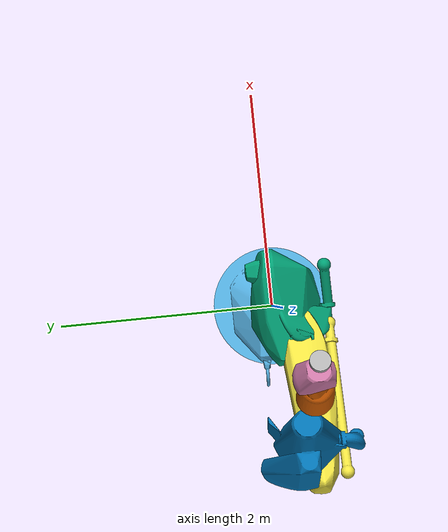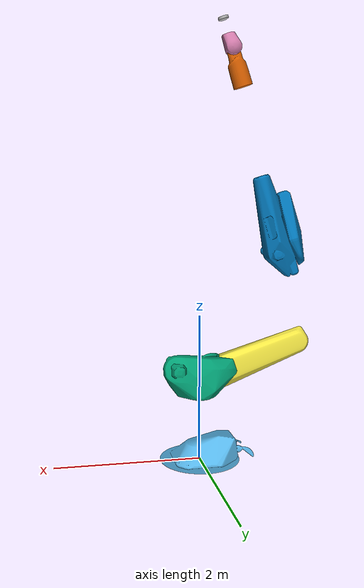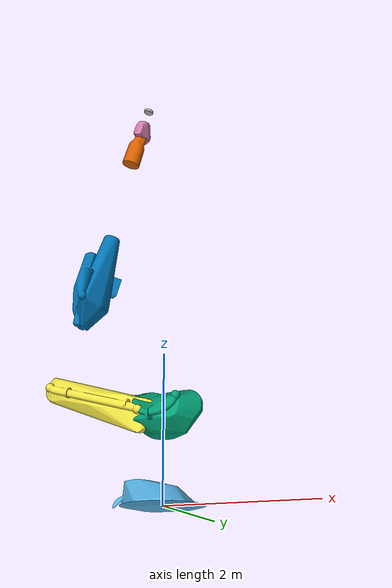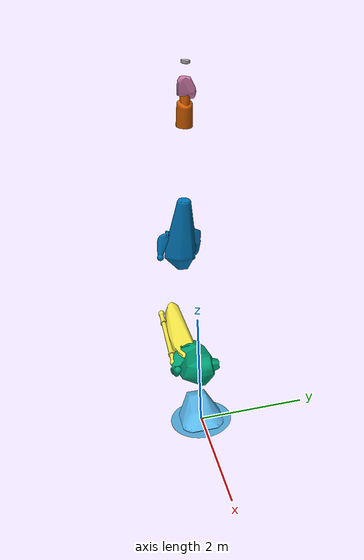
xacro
<?xml version="1.0"?>
<robot name="kr150_r3100_2" xmlns:xacro="http://wiki.ros.org/xacro">
  <!-- Import urdf file  -->
  <xacro:include filename="$(find kuka_quantec_support)/urdf/kr150_r3100_2_macro.xacro" />
  <!-- Read additional arguments  -->
  <xacro:arg name="use_fake_hardware" default="false"/>
  <xacro:arg name="roundtrip_time" default="0"/>
  <xacro:arg name="client_ip" default="0.0.0.0"/>
  <xacro:arg name="client_port" default="59152"/>
  <xacro:arg name="controller_ip" default="0.0.0.0"/>
  <xacro:arg name="prefix" default=""/>
  <xacro:arg name="x" default="0"/>
  <xacro:arg name="y" default="0"/>
  <xacro:arg name="z" default="0"/>
  <xacro:arg name="roll" default="0"/>
  <xacro:arg name="pitch" default="0"/>
  <xacro:arg name="yaw" default="0"/>
  <xacro:kuka_kr150_r3100_2_robot client_ip="$(arg client_ip)" client_port="$(arg client_port)" controller_ip="$(arg controller_ip)" prefix="$(arg prefix)" use_fake_hardware="$(arg use_fake_hardware)" roundtrip_time="$(arg roundtrip_time)">
    <origin xyz="$(arg x) $(arg y) $(arg z)" rpy="$(arg roll) $(arg pitch) $(arg yaw)"/>
  </xacro:kuka_kr150_r3100_2_robot>
</robot>

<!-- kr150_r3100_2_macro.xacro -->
<robot xmlns:xacro="http://wiki.ros.org/xacro">
  <xacro:include filename="$(find kuka_quantec_support)/urdf/kr_quantec_ros2_control.xacro"/>
  <xacro:include filename="$(find kuka_quantec_support)/urdf/kr_quantec_transmission.xacro"/>
  <xacro:macro name="kuka_kr150_r3100_2_robot" params="client_ip client_port controller_ip prefix use_fake_hardware roundtrip_time *origin">
    <xacro:include filename="$(find kuka_resources)/urdf/common_materials.xacro"/>
    <!-- ros2 control instance -->
    <xacro:kuka_quantec_ros2_control name="${prefix}kr150_r3100_2" client_ip="${client_ip}" client_port="${client_port}" controller_ip="${controller_ip}" prefix="${prefix}" use_fake_hardware="${use_fake_hardware}" roundtrip_time="${roundtrip_time}"/>
    <link name="world"/>
    <!-- base link -->
    <link name="${prefix}base_link">
      <visual>
        <origin rpy="0 0 0" xyz="0 0 0"/>
        <geometry>
          <mesh filename="package://kuka_quantec_support/meshes/kr150_r3100_2/visual/base_link.stl" />
        </geometry>
        <xacro:material_kuka_pedestal />
      </visual>
      <collision>
        <origin rpy="0 0 0" xyz="0 0 0"/>
        <geometry>
          <mesh filename="package://kuka_quantec_support/meshes/kr150_r3100_2/collision/base_link.stl" />
        </geometry>
      </collision>
    </link>
    <!-- link 1 (A1) -->
    <link name="${prefix}link_1">
      <visual>
        <origin xyz="0 0 0" rpy="0 0 0"/>
        <geometry>
          <mesh filename="package://kuka_quantec_support/meshes/kr150_r3100_2/visual/link_1.stl" />
        </geometry>
        <xacro:material_kuka_orange />
      </visual>
      <collision>
        <origin xyz="0 0 0" rpy="0 0 0"/>
        <geometry>
          <mesh filename="package://kuka_quantec_support/meshes/kr150_r3100_2/collision/link_1.stl" />
        </geometry>
      </collision>
    </link>
    <!-- link 2 -->
    <link name="${prefix}link_2">
      <visual>
        <origin xyz="0 0 0" rpy="0 0 0"/>
        <geometry>
          <mesh filename="package://kuka_quantec_support/meshes/kr150_r3100_2/visual/link_2.stl"/>
        </geometry>
        <xacro:material_kuka_orange />
      </visual>
      <collision>
        <origin xyz="0 0 0" rpy="0 0 0"/>
        <geometry>
          <mesh filename="package://kuka_quantec_support/meshes/kr150_r3100_2/collision/link_2.stl"  />
        </geometry>
      </collision>
    </link>
    <!-- link 3 -->
    <link name="${prefix}link_3">
      <visual>
        <origin xyz="0 0 0" rpy="0 0 0"/>
        <geometry>
          <mesh filename="package://kuka_quantec_support/meshes/kr150_r3100_2/visual/link_3.stl" />
        </geometry>
        <xacro:material_kuka_orange />
      </visual>
      <collision>
        <origin xyz="0 0 0" rpy="0 0 0"/>
        <geometry>
          <mesh filename="package://kuka_quantec_support/meshes/kr150_r3100_2/collision/link_3.stl"  />
        </geometry>
      </collision>
    </link>
    <!-- link 4 -->
    <link name="${prefix}link_4">
      <visual>
        <origin xyz="0 0 0" rpy="0 0 0"/>
        <geometry>
          <mesh filename="package://kuka_quantec_support/meshes/kr150_r3100_2/visual/link_4.stl" />
        </geometry>
        <xacro:material_kuka_orange />
      </visual>
      <collision>
        <origin xyz="0 0 0" rpy="0 0 0"/>
        <geometry>
          <mesh filename="package://kuka_quantec_support/meshes/kr150_r3100_2/collision/link_4.stl"  />
        </geometry>
      </collision>
    </link>
    <!-- link 5 -->
    <link name="${prefix}link_5">
      <visual>
        <origin xyz="0 0 0" rpy="0 0 0"/>
        <geometry>
          <mesh filename="package://kuka_quantec_support/meshes/kr150_r3100_2/visual/link_5.stl" />
        </geometry>
        <xacro:material_kuka_orange />
      </visual>
      <collision>
        <origin xyz="0 0 0" rpy="0 0 0"/>
        <geometry>
          <mesh filename="package://kuka_quantec_support/meshes/kr150_r3100_2/collision/link_5.stl" />
        </geometry>
      </collision>
    </link>
    <!-- link 6 -->
    <link name="${prefix}link_6">
      <visual>
        <origin xyz="0 0 0" rpy="0 0 0"/>
        <geometry>
          <mesh filename="package://kuka_quantec_support/meshes/kr150_r3100_2/visual/link_6.stl" />
        </geometry>
        <xacro:material_kuka_orange />
      </visual>
      <collision>
        <origin xyz="0 0 0" rpy="0 0 0"/>
        <geometry>
          <mesh filename="package://kuka_quantec_support/meshes/kr150_r3100_2/collision/link_6.stl" />
        </geometry>
      </collision>
    </link>
    <!-- END LINKS -->

    <!-- JOINTS -->
    <joint name="${prefix}world-base_link" type="fixed">
      <parent link="world"/>
      <child link="${prefix}base_link"/>
      <xacro:insert_block name="origin"/>
    </joint>
    <!-- joint 1 (A1) -->
    <joint name="${prefix}joint_1" type="revolute">
      <origin xyz="0 0 0.645" rpy="0 0 0"/>
      <parent link="${prefix}base_link"/>
      <child link="${prefix}link_1"/>
      <axis xyz="0 0 -1"/>
      <limit effort="0" lower="${radians(-185)}" upper="${radians(185)}" velocity="${radians(105)}"/>
    </joint>
    <!-- joint 2 (A2) -->
    <joint name="${prefix}joint_2" type="revolute">
      <origin xyz="0.33 0 0" rpy="0 0 0"/>
      <parent link="${prefix}link_1"/>
      <child link="${prefix}link_2"/>
      <axis xyz="0 1 0"/>
      <limit effort="0" lower="${radians(-140)}" upper="${radians(-5)}" velocity="${radians(107)}"/>
    </joint>
    <!-- joint 3 (A3) -->
    <joint name="${prefix}joint_3" type="revolute">
      <origin xyz="1.350 0 0" rpy="0 0 0"/>
      <parent link="${prefix}link_2"/>
      <child link="${prefix}link_3"/>
      <axis xyz="0 1 0"/>
      <limit effort="0" lower="${radians(-120)}" upper="${radians(168)}" velocity="${radians(114)}"/>
    </joint>
    <!-- joint 4 (A4) -->
    <joint name="${prefix}joint_4" type="revolute">
      <origin xyz="1.420 0 0.115" rpy="0 0 0"/>
      <parent link="${prefix}link_3"/>
      <child link="${prefix}link_4"/>
      <axis xyz="-1 0 0"/>
      <limit effort="0" lower="${radians(-350)}" upper="${radians(350)}" velocity="${radians(190)}"/>
    </joint>
    <!-- joint 5 (A5) -->
    <joint name="${prefix}joint_5" type="revolute">
      <origin xyz="0 0 0" rpy="0 0 0"/>
      <parent link="${prefix}link_4"/>
      <child link="${prefix}link_5"/>
      <axis xyz="0 1 0"/>
      <limit effort="0" lower="${radians(-125)}" upper="${radians(125)}" velocity="${radians(180)}"/>
    </joint>
    <!-- joint 6 (A6) -->
    <joint name="${prefix}joint_6" type="revolute">
      <origin xyz="0.215 0 0" rpy="0 0 0"/>
      <parent link="${prefix}link_5"/>
      <child link="${prefix}link_6"/>
      <axis xyz="-1 0 0"/>
      <limit effort="0" lower="${radians(-350)}" upper="${radians(350)}" velocity="${radians(260)}"/>
    </joint>

    <!-- ROS-Industrial 'base' frame: base_link to KUKA $ROBROOT coordinate system transform -->
    <link name="${prefix}base" />
    <joint name="${prefix}base_link-base" type="fixed">
      <origin xyz="0 0 0" rpy="0 0 0"/>
      <parent link="${prefix}base_link"/>
      <child link="${prefix}base"/>
    </joint>

    <!-- ROS-Industrial 'flange' frame: attachment point for EEF models -->
    <link name="${prefix}flange" />
    <joint name="${prefix}link_6-flange" type="fixed">
      <origin xyz="0 0 0" rpy="0 ${pi/2} 0" />
      <parent link="${prefix}link_6" />
      <child link="${prefix}flange" />
    </joint>

    <!-- ROS-Industrial 'tool0' frame: all-zeros tool frame -->
    <!-- This frame corresponds to the $FLANGE coordinate system in KUKA KRC controllers. -->
    <link name="${prefix}tool0"/>
    <joint name="${prefix}flange-tool0" type="fixed">
      <parent link="${prefix}flange"/>
      <child link="${prefix}tool0"/>
      <origin xyz="0 0 0" rpy="0 0 0"/>
    </joint>

  </xacro:macro>
</robot>
